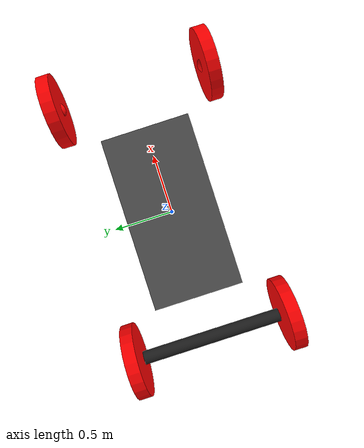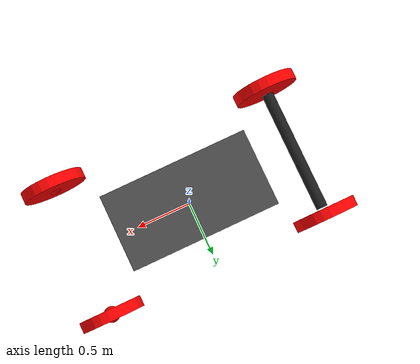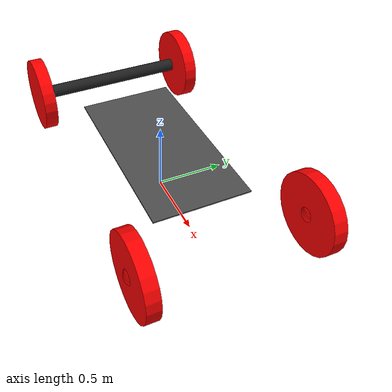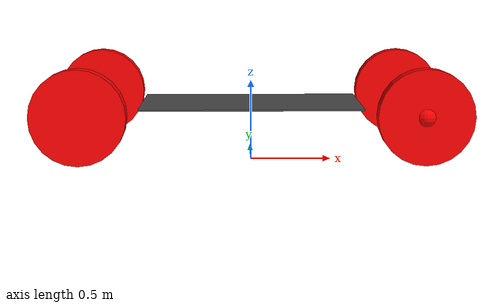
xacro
<?xml version="1.0"?>
<robot name="astrid" xmlns:xacro="http://www.ros.org/wiki/xacro">
    <xacro:include filename="$(find astrid-simulation)/urdf/common_properties.xacro"/>
    <xacro:include filename="$(find astrid-simulation)/urdf/astrid.gazebo.xacro"/>

    <!-- Degree-to-radian conversions -->
    <xacro:property name="degrees_45" value="0.785398163" />
    <xacro:property name="degrees_90" value="1.57079633" />
    <xacro:property name="degrees_30" value="0.523598776" />

    <!-- Astrid chassis parameters -->
    <xacro:property name="chassis_length" value="1.3596" />
    <xacro:property name="chassis_width" value="1" />
    <xacro:property name="chassis_height" value="0.01" />
    <xacro:property name="chassis_mass" value="55" />

    <!-- Astrid Wheel parameters -->
    <xacro:property name="hub_dia" value="0.06" />
    <xacro:property name="tire_dia" value="0.56" />
    <xacro:property name="tire_width" value="0.095" />
    <xacro:property name="hex_hub_depth" value="0.039" />
    <xacro:property name="wheel_mass" value="7" />

    <!-- Claculate inertia of chassis (cuboid) -->
    <xacro:macro name="solid_cuboid_inertial" params="width depth height mass *origin">
        <inertial>
            <xacro:insert_block name="origin" />
            <mass value="${mass}" />
            <inertia ixx="${mass * (depth * depth + height * height) / 12}" ixy="0" ixz="0" iyy="${mass * (width * width + height * height) / 12}" iyz="0" izz="${mass * (width * width + depth * depth) / 12}" />
        </inertial>
    </xacro:macro>

    <xacro:property name="servo_stall_torque" value="57" />
    <xacro:property name="servo_no_load_speed" value="14.66" />

    <xacro:macro name="null_inertial">
        <inertial>
          <mass value="0.001" />
          <inertia ixx="0.001" ixy="0" ixz="0" iyy="0.001" iyz="0" izz="0.001" />
        </inertial>
    </xacro:macro>

    <link name="base_link"></link>

    <joint name="baseLink_chassis" type="fixed">
        <origin xyz="0.0 0.0 0.36" rpy="0.0 0.0 0.0"/>
        <parent link="base_link" />
        <child link="chassis" />
    </joint>

    <link name="chassis">
        <xacro:solid_cuboid_inertial width="${chassis_length}" depth="${chassis_width}" height="${chassis_height*20}" mass="${chassis_mass}">
            <origin xyz="0.0 0.0 0.0" rpy="0.0 0.0 0.0"/>
        </xacro:solid_cuboid_inertial>

        <visual>
            <origin xyz="0.0 0.0 0.0" rpy="0.0 0.0 0.0"/>
            <geometry>
                <box size="${chassis_length} ${chassis_width-0.3} ${chassis_height}" />
            </geometry>
        </visual>

        <collision>
            <origin xyz="0.0 0.0 0.0" rpy="0.0 0.0 0.0"/>
            <geometry>
                <box size="${chassis_length} ${chassis_width-0.3} ${chassis_height}" />
            </geometry>
        </collision>
    </link>

    <link name="front_left_wheel">
        <inertial>
            <origin xyz="0.0 0.0 0.0" rpy="-1.57 0.0 0.0" />
            <mass value="7.0" />
            <inertia ixx="0.586312" ixy="0.0" ixz="0.0" iyy="0.335529" iyz="0.0" izz="0.335529" />
        </inertial>
        <visual name="">
            <origin xyz="0.0 0.0 0.0" rpy="-1.57 0.0 0.0" />
            <geometry>
                <cylinder radius="${tire_dia / 2}" length="${tire_width}" />
            </geometry>
            <material name="">
                <color rgba="1.0 0.0 0.0 1.0" />
                <texture filename="" />
            </material>
        </visual>
        <collision>
            <origin xyz="0.0 0.0 0.0" rpy="-1.57 0.0 0.0"/>
            <geometry>
                <cylinder radius="${tire_dia / 2}" length="${tire_width}" />
            </geometry>
        </collision>
    </link>

    <link name="front_right_wheel">
        <inertial>
            <origin xyz="0.0 0.0 0.0" rpy="-1.57 0.0 0.0"/>
            <mass value="7.0" />
            <inertia ixx="0.586312" ixy="0.0" ixz="0.0" iyy="0.335529" iyz="0.0" izz="0.335529" />
        </inertial>
        <visual name="">
            <origin xyz="0.0 0.0 0.0" rpy="-1.57 0.0 0.0"/>
            <geometry>
                <cylinder radius="${tire_dia / 2}" length="${tire_width}" />
            </geometry>
            <material name="">
                <color rgba="1.0 0.0 0.0 1.0" />
                <texture filename="" />
            </material>
        </visual>
        <collision>
            <origin xyz="0.0 0.0 0.0" rpy="-1.57 0.0 0.0" />
            <geometry>
                <cylinder radius="${tire_dia / 2}" length="${tire_width}" />
            </geometry>
        </collision>
    </link>

    <link name="rear_left_wheel">
        <inertial>
            <origin xyz="0.0 0.0 0.0" rpy="1.57 0.0 0.0" />
            <mass value="7.0" />
            <inertia ixx="0.586312" ixy="0.0" ixz="0.0" iyy="0.335529" iyz="0.0" izz="0.335529" />
        </inertial>
        <visual name="">
            <origin xyz="0.0 0.0 0.0" rpy="1.57 0.0 0.0" />
            <geometry>
                <cylinder radius="${tire_dia / 2}" length="${tire_width}" />
            </geometry>
            <material name="">
                <color rgba="1.0 0.0 0.0 1.0" />
                <texture filename="" />
            </material>
        </visual>
        <collision>
            <origin xyz="0.0 0.0 0.0" rpy="1.57 0.0 0.0" />
            <geometry>
                <cylinder radius="${tire_dia / 2}" length="${tire_width}" />
            </geometry>
        </collision>
    </link>

    <link name="rear_right_wheel">
        <inertial>
            <origin xyz="0.0 0.0 0.0" rpy="1.57 0.0 0.0" />
            <mass value="7.0" />
            <inertia ixx="0.586312" ixy="0.0" ixz="0.0" iyy="0.335529" iyz="0.0" izz="0.335529" />
        </inertial>
        <visual name="">
            <origin xyz="0.0 0.0 0.0" rpy="1.57 0.0 0.0" />
            <geometry>
                <cylinder radius="${tire_dia / 2}" length="${tire_width}" />
            </geometry>
            <material name="">
                <color rgba="1.0 0.0 0.0 1.0" />
                <texture filename="" />
            </material>
        </visual>
        <collision>
            <origin xyz="0.0 0.0 0.0" rpy="1.57 0.0 0.0" />
            <geometry>
                <cylinder radius="${tire_dia / 2}" length="${tire_width}" />
            </geometry>
        </collision>
    </link>

    <link name="rear_axle">
        <inertial>
            <origin xyz="0 0 0" rpy="-1.57 0.0 0.0" />
            <mass value="30.0"/>
            <inertia ixx="0.084375" ixy="0.0" ixz="0.0" iyy="4.64581" iyz="0.0" izz="4.64581"/>
        </inertial>
        <visual name="">
            <origin xyz="0 0 0" rpy="-1.57 0.0 0.0" />
            <geometry>
                <cylinder radius="0.05" length="1.079600"/>
            </geometry>
        </visual>
        <collision>
            <origin xyz="0 0 0" rpy="-1.57 0.0 0.0" />
            <geometry>
                <cylinder radius="0.05" length="1.079600"/>
            </geometry>
        </collision>
    </link>

    <link name="left_steering_link">
        <xacro:null_inertial />
    </link>

    <joint name="left_steering_link_joint" type="fixed">
        <parent link="chassis"/>
        <child link="left_steering_link"/>
        <origin xyz="0.0 0.0 0.0" rpy="0.0 0.0 0.0"/>
    </joint>

    <link name="front_left_axle">
        <inertial>
            <mass value="0.0"/>
            <inertia ixx="0.01" ixy="0.0" ixz="0.0" iyy="0.01" iyz="0.0" izz="0.01"/>
        </inertial>
        <visual name="">
            <origin xyz="0.0 0.0 0.0" rpy="0.0 0.0 0.0" />
            <geometry>
                <sphere radius="0.07"/>
            </geometry>
            <material name="">
                <color rgba="1.0 0.0 0.0 1.0"/>
                <texture filename=""/>
            </material>
        </visual>
        <collision>
            <origin xyz="0.0 0.0 0.0" rpy="0.0 0.0 0.0" />
            <geometry>
                <sphere radius="0.07"/>
            </geometry>
        </collision>
    </link>

    <link name="right_steering_link">
        <xacro:null_inertial />
    </link>

    <joint name="right_steering_link_joint" type="fixed">
        <parent link="chassis"/>
        <child link="right_steering_link"/>
        <origin xyz="0.0 0.0 0.0" rpy="0.0 0.0 0.0"/>
    </joint>

    <link name="front_right_axle">
        <inertial>
            <origin xyz="0.0 0.0 0.0" rpy="0.0 0.0 0.0" />
            <mass value="0.0"/>
            <inertia ixx="0.01" ixy="0.0" ixz="0.0" iyy="0.01" iyz="0.0" izz="0.01"/>
        </inertial>
        <visual name="">
            <geometry>
                <sphere radius="0.07"/>
            </geometry>
            <material name="">
                <color rgba="1.0 0.0 0.0 1.0"/>
                <texture filename=""/>
            </material>
        </visual>
        <collision>
            <geometry>
                <sphere radius="0.07"/>
            </geometry>
        </collision>
    </link>

    <!-- joints -->

    <joint name="front_right_axle_joint" type="continuous">
        <origin xyz="1.0 -0.6 0" rpy="0 0 0" />
        <parent link="right_steering_link"/>
        <child link="front_right_axle"/>
        <axis xyz="0.0 0.0 1.0"/>
        <limit lower="${-degrees_30}" upper="${degrees_30}" effort="${servo_stall_torque}" velocity="${servo_no_load_speed}" />
    </joint>

    <joint name="front_left_axle_joint" type="continuous">
        <origin xyz="1.0 0.6 0" rpy="0 0 0" />
        <parent link="left_steering_link"/>
        <child link="front_left_axle"/>
        <axis xyz="0.0 0 -1.0"/>
        <limit lower="${-degrees_30}" upper="${degrees_30}" effort="${servo_stall_torque}" velocity="${servo_no_load_speed}" />
    </joint>

    <joint name="front_right_wheel_joint" type="revolute">
        <origin xyz="0.0 0.0 0" rpy="0 0 0" />
        <parent link="front_right_axle"/>
        <child link="front_right_wheel"/>
        <axis xyz="0 1 0" />
        <limit lower="${-degrees_30}" upper="${degrees_30}" effort="${servo_stall_torque}" velocity="${servo_no_load_speed}" />
    </joint>

    <joint name="front_left_wheel_joint" type="revolute">
        <origin xyz="0.0 0.0 0" rpy="0 0 0" />
        <parent link="front_left_axle"/>
        <child link="front_left_wheel"/>
        <axis xyz="0 1 0" />
        <limit lower="${-degrees_30}" upper="${degrees_30}" effort="${servo_stall_torque}" velocity="${servo_no_load_speed}" />
    </joint>

    <joint name="rear_axle_joint" type="fixed">
        <origin xyz="-1.0 0.0 0" rpy="0 0.0 0.0"/>
        <parent link="chassis"/>
        <child link="rear_axle"/>
    </joint>

    <joint name="rear_right_wheel_joint" type="revolute">
        <origin xyz="0 -0.6 0.0" rpy="0.0 0.0 0.0"/>
        <parent link="rear_axle"/>
        <child link="rear_right_wheel"/>
        <axis xyz="0 1 0" />
        <limit lower="${-degrees_30}" upper="${degrees_30}" effort="${servo_stall_torque}" velocity="${servo_no_load_speed}" />
    </joint>

    <joint name="rear_left_wheel_joint" type="revolute">
        <origin xyz="0 0.6 0.0" rpy="0.0 0.0 0.0"/>
        <parent link="rear_axle"/>
        <child link="rear_left_wheel"/>
        <axis xyz="0 1 0" />
        <limit lower="${-degrees_30}" upper="${degrees_30}" effort="${servo_stall_torque}" velocity="${servo_no_load_speed}" />
    </joint>

</robot>
